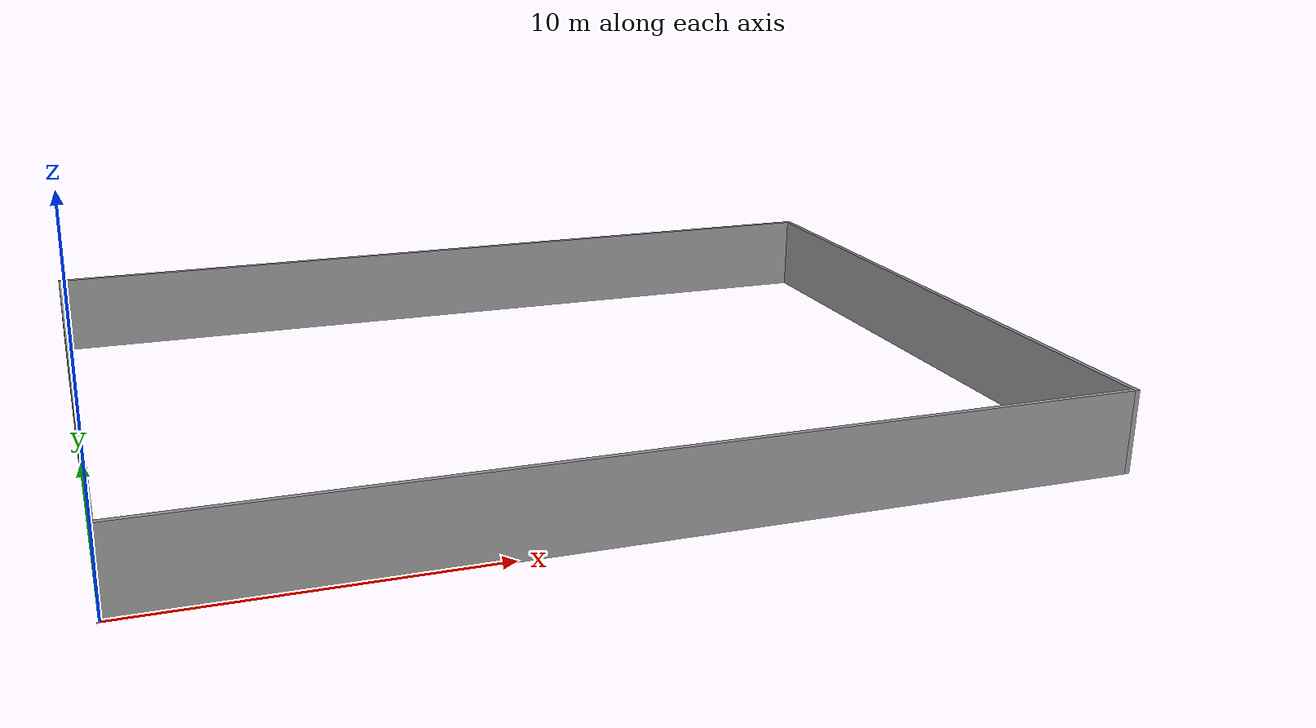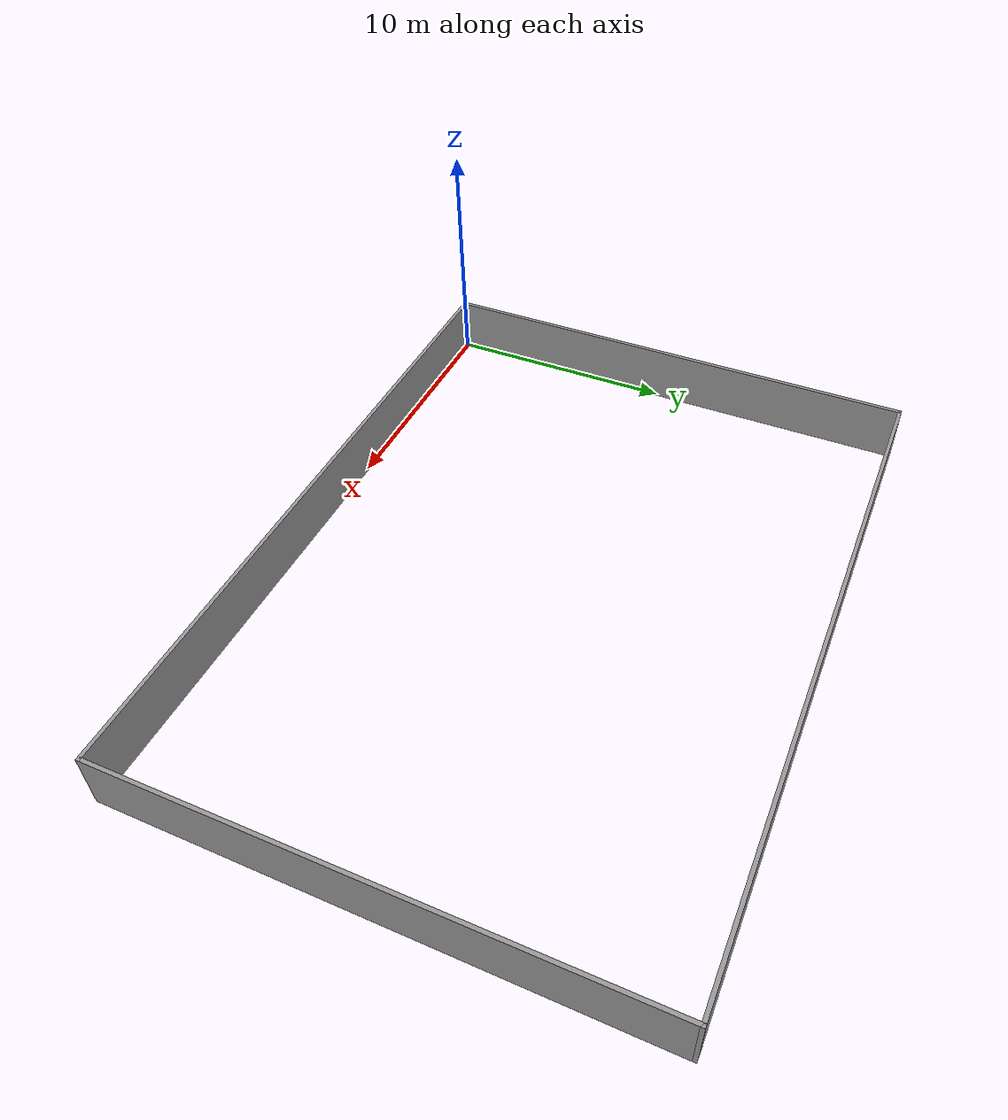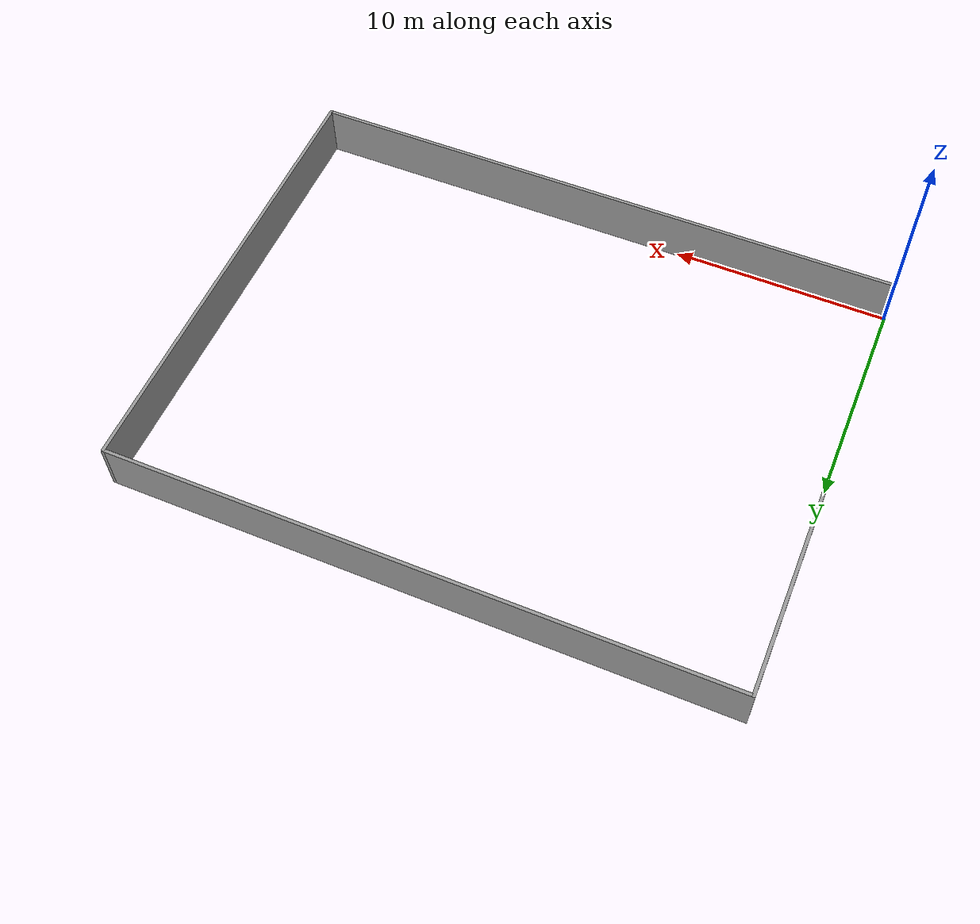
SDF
<?xml version='1.0'?>
<sdf version='1.7'>
  <model name='walls'>
    <pose>14 10.5 0 0 -0 0</pose>
    <link name='Wall_28'>
      <collision name='Wall_28_Collision'>
        <geometry>
          <box>
            <size>28.15 0.15 2.5</size>
          </box>
        </geometry>
        <pose>0 0 1.25 0 -0 0</pose>
      </collision>
      <visual name='Wall_28_Visual'>
        <pose>0 0 1.25 0 -0 0</pose>
        <geometry>
          <box>
            <size>28.15 0.15 2.5</size>
          </box>
        </geometry>
        <material>
          <script>
            <uri>file://media/materials/scripts/gazebo.material</uri>
            <name>Gazebo/Grey</name>
          </script>
          <ambient>1 1 1 1</ambient>
        </material>
        <meta>
          <layer>0</layer>
        </meta>
      </visual>
      <pose>0 -10.5 0 0 -0 0</pose>
    </link>
    <link name='Wall_29'>
      <collision name='Wall_29_Collision'>
        <geometry>
          <box>
            <size>21.15 0.15 2.5</size>
          </box>
        </geometry>
        <pose>0 0 1.25 0 -0 0</pose>
      </collision>
      <visual name='Wall_29_Visual'>
        <pose>0 0 1.25 0 -0 0</pose>
        <geometry>
          <box>
            <size>21.15 0.15 2.5</size>
          </box>
        </geometry>
        <material>
          <script>
            <uri>file://media/materials/scripts/gazebo.material</uri>
            <name>Gazebo/Grey</name>
          </script>
          <ambient>1 1 1 1</ambient>
        </material>
        <meta>
          <layer>0</layer>
        </meta>
      </visual>
      <pose>14 0 0 0 -0 1.5708</pose>
    </link>
    <link name='Wall_30'>
      <collision name='Wall_30_Collision'>
        <geometry>
          <box>
            <size>28.15 0.15 2.5</size>
          </box>
        </geometry>
        <pose>0 0 1.25 0 -0 0</pose>
      </collision>
      <visual name='Wall_30_Visual'>
        <pose>0 0 1.25 0 -0 0</pose>
        <geometry>
          <box>
            <size>28.15 0.15 2.5</size>
          </box>
        </geometry>
        <material>
          <script>
            <uri>file://media/materials/scripts/gazebo.material</uri>
            <name>Gazebo/Grey</name>
          </script>
          <ambient>1 1 1 1</ambient>
        </material>
        <meta>
          <layer>0</layer>
        </meta>
      </visual>
      <pose>0 10.5 0 0 -0 3.14159</pose>
    </link>
    <link name='Wall_31'>
      <collision name='Wall_31_Collision'>
        <geometry>
          <box>
            <size>21.15 0.15 2.5</size>
          </box>
        </geometry>
        <pose>0 0 1.25 0 -0 0</pose>
      </collision>
      <visual name='Wall_31_Visual'>
        <pose>0 0 1.25 0 -0 0</pose>
        <geometry>
          <box>
            <size>21.15 0.15 2.5</size>
          </box>
        </geometry>
        <material>
          <script>
            <uri>file://media/materials/scripts/gazebo.material</uri>
            <name>Gazebo/Grey</name>
          </script>
          <ambient>1 1 1 1</ambient>
        </material>
        <meta>
          <layer>0</layer>
        </meta>
      </visual>
      <pose>-14 0 0 0 -0 -1.5708</pose>
    </link>
    <static>1</static>
  </model>
</sdf>
